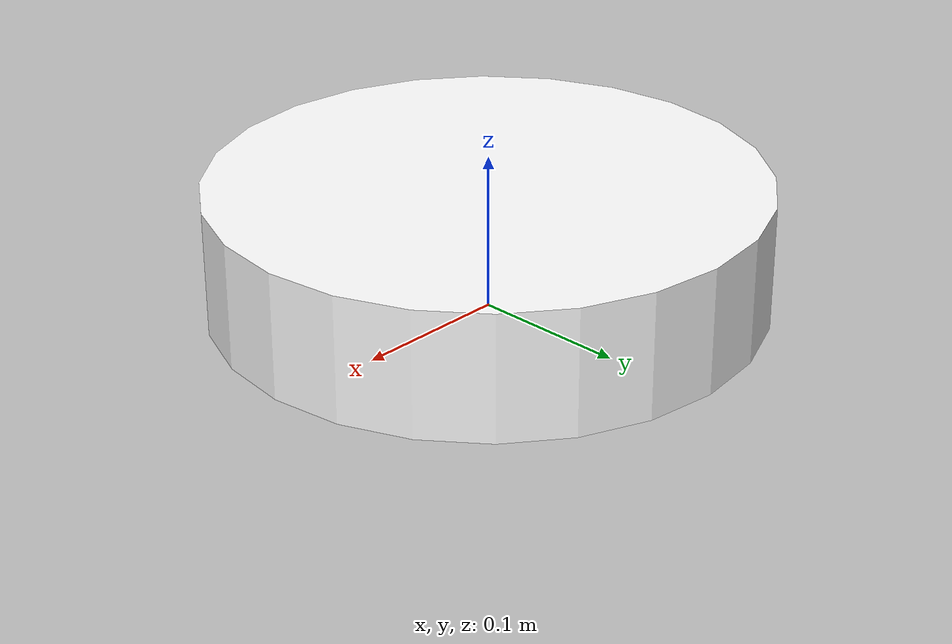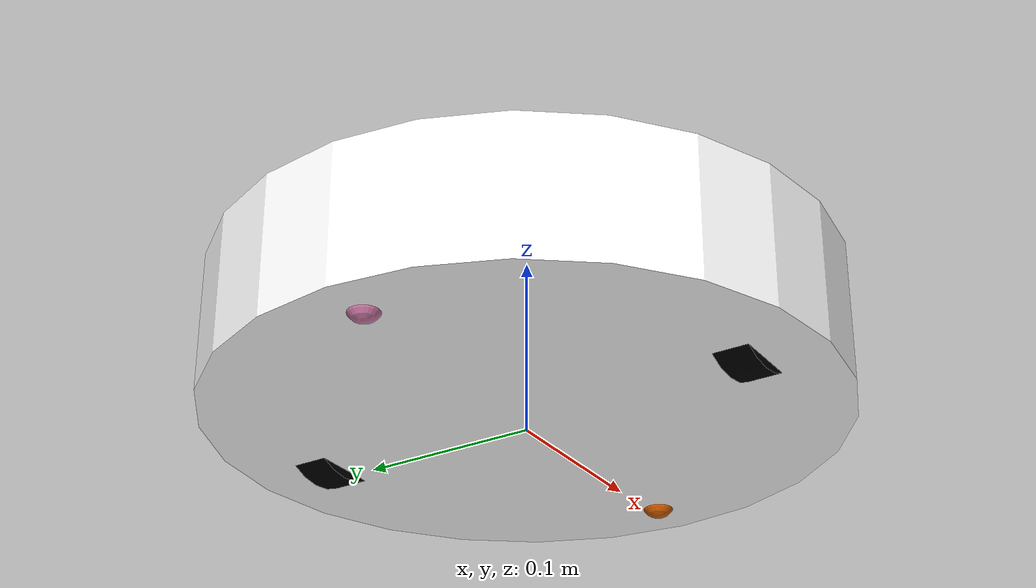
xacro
<?xml version="1.0"?>
<robot xmlns:xacro="http://www.ros.org/wiki/xacro" name="aluminum">
    <xacro:include filename="inertials.xacro"/>

    <material name="white">
        <color rgba="1 1 1 1"/>
    </material>

    <material name="black">
        <color rgba="0 0 0 1"/>
    </material>

    <!-- base footprint -->
    <link name="base_footprint">

    </link>

    <!-- base link -->
    <joint name="base_link_joint" type="fixed">
        <parent link="base_footprint"/>
        <child link="base_link"/>
        <origin xyz="0.0 0.0 0.005"/>
    </joint>

    <link name="base_link">
        <origin xyz="0.0 0.0 0.0"/>
    </link>

    <!-- chassis -->
    <joint name="chassis_joint" type="fixed">
        <parent link="base_link"/>
        <child link="chassis"/>
        <origin xyz="0.0 0.0 0.04"/>
    </joint>

    <link name="chassis">
        <visual>
            <geometry>
                <cylinder radius="0.175" length="0.08"/>
            </geometry>
            <material name="white"/>
        </visual>

        <collision>
            <geometry>
                <cylinder radius="0.175" length="0.08"/>
            </geometry>
        </collision>

    <xacro:inertial_cylinder mass = "4.2" length="0.08" radius="0.175">
        <origin xyz="0.0 0.0 0.0" rpy="0.0 0.0 0.0"/>
    </xacro:inertial_cylinder>
    </link>

    <!-- left wheel -->
    <joint name="left_wheel_joint" type="continuous">
        <parent link="chassis"/>
        <child link="left_wheel"/>
        <origin xyz="0.0 0.13 -0.005" rpy="-${pi/2} 0 0.0"/>
        <axis xyz="0.0 0.0 1"/>
    </joint>

    <link name="left_wheel">
        <visual>
            <geometry>
                <cylinder radius="0.04" length="0.02"/>
            </geometry>
            <material name="black"/>
        </visual>

        <collision>
            <geometry>
                <cylinder radius="0.04" length="0.02"/>
            </geometry>
        </collision>

    <xacro:inertial_cylinder mass = "0.1" length="0.02" radius="0.04">
        <origin xyz="0.0 0.0 0.0" rpy="0.0 0.0 0.0"/>
    </xacro:inertial_cylinder>
    </link>

    <!-- right wheel -->
    <joint name="right_wheel_joint" type="continuous">
        <parent link="chassis"/>
        <child link="right_wheel"/>
        <origin xyz="0.0 -0.13 -0.005" rpy="${pi/2} 0 0.0"/>
        <axis xyz="0.0 0.0 -1"/>
    </joint>

    <link name="right_wheel">
        <visual>
            <geometry>
                <cylinder radius="0.04" length="0.02"/>
            </geometry>
            <material name="black"/>
        </visual>

        <collision>
            <geometry>
                <cylinder radius="0.04" length="0.02"/>
            </geometry>
        </collision>

    <xacro:inertial_cylinder mass = "0.1" length="0.02" radius="0.04">
        <origin xyz="0.0 0.0 0.0" rpy="0.0 0.0 0.0"/>
    </xacro:inertial_cylinder>
    </link>

    <!-- front caster -->
    <joint name="front_caster_joint" type="fixed">
        <parent link="chassis"/>
        <child link="front_caster"/>
        <origin xyz="0.145 0.0 -0.035"/>
    </joint>

    <link name="front_caster">
        <visual>
            <geometry>
                <sphere radius="0.01"/>
            </geometry>
        </visual>

        <collision>
            <geometry>
                <sphere radius="0.01"/>
            </geometry>
        </collision>

        <xacro:inertial_sphere mass = "0.06" radius="0.01">
            <origin xyz="0.0 0.0 0.0" rpy="0.0 0.0 0.0"/>
        </xacro:inertial_sphere>
    </link>

    <!-- rear caster -->
    <joint name="rear_caster_joint" type="fixed">
        <parent link="chassis"/>
        <child link="rear_caster"/>
        <origin xyz="-0.145 0.0 -0.035"/>
    </joint>

    <link name="rear_caster">
        <visual>
            <geometry>
                <sphere radius="0.01"/>
            </geometry>
        </visual>

        <collision>
            <geometry>
                <sphere radius="0.01"/>
            </geometry>
        </collision>

        <xacro:inertial_sphere mass = "0.06" radius="0.01">
            <origin xyz="0.0 0.0 0.0" rpy="0.0 0.0 0.0"/>
        </xacro:inertial_sphere>
    </link>
</robot>

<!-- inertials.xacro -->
<robot xmlns:xacro="http://www.ros.org/wiki/xacro" >

    <xacro:macro name="inertial_cylinder" params="mass length radius *origin">
        <inertial>
            <xacro:insert_block name="origin"/>
            <mass value="${mass}" />
            <inertia ixx="${(1/12) * mass * (3*radius*radius + length*length)}" ixy="0.0" ixz="0.0"
                    iyy="${(1/12) * mass * (3*radius*radius + length*length)}" iyz="0.0"
                    izz="${(1/2) * mass * (radius*radius)}" />
        </inertial>
    </xacro:macro>

    <xacro:macro name="inertial_sphere" params="mass radius *origin">
        <inertial>
            <xacro:insert_block name="origin"/>
            <mass value="${mass}" />
            <inertia ixx="${(2/5) * mass * (radius*radius)}" ixy="0.0" ixz="0.0"
                    iyy="${(2/5) * mass * (radius*radius)}" iyz="0.0"
                    izz="${(2/5) * mass * (radius*radius)}" />
        </inertial>
    </xacro:macro>

    <xacro:macro name="inertial_box" params="mass x y z *origin">
        <inertial>
            <xacro:insert_block name="origin"/>
            <mass value="${mass}" />
            <inertia ixx="${(1/12) * mass * (y*y+z*z)}" ixy="0.0" ixz="0.0"
                    iyy="${(1/12) * mass * (x*x+z*z)}" iyz="0.0"
                    izz="${(1/12) * mass * (x*x+y*y)}" />
        </inertial>
    </xacro:macro>

</robot>
